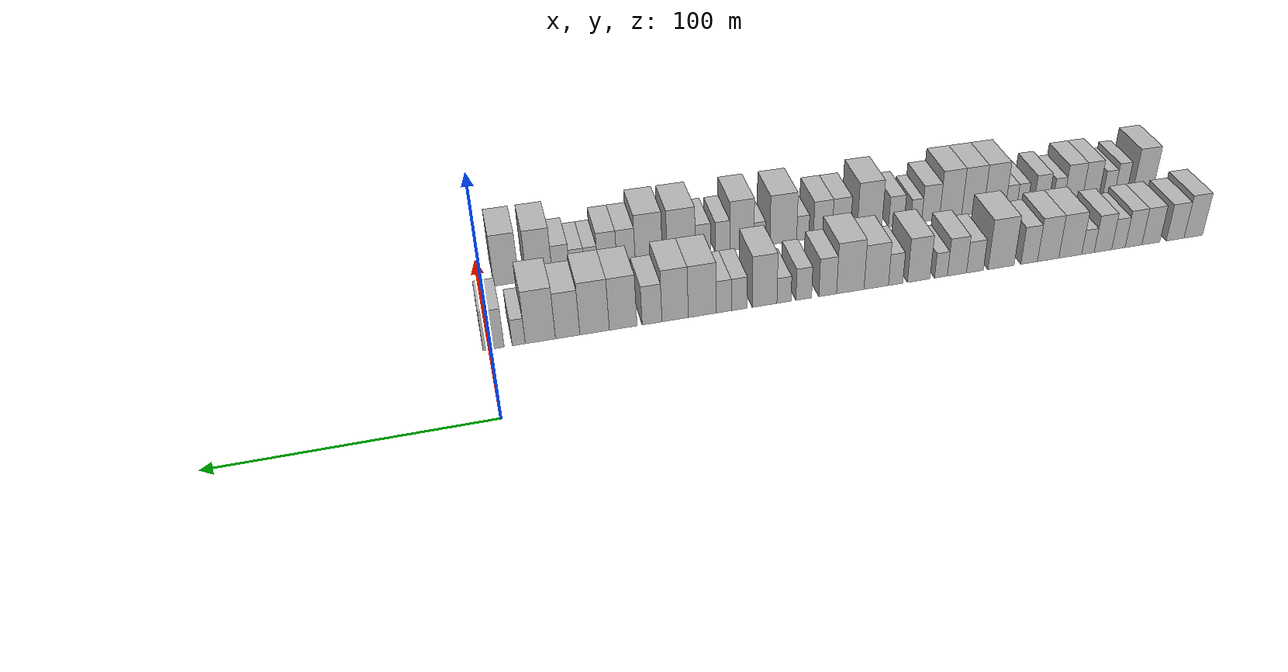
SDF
<sdf version="1.6">
 <world name="default">
  <model name="building_1">
   <static>1</static>
   <pose>50.0000 -295.6084 0 0.000000 0.000000 0.000000</pose>
   <link name="link">
    <pose>0 0 10.50 0 0 0</pose>
    <collision name="collision"><geometry><box><size>20.0000 8.7832 21.0000</size></box></geometry></collision>
    <visual name="visual">
     <cast_shadows>0</cast_shadows>
     <geometry><box><size>20.0000 8.7832 21.0000</size></box></geometry>
     <material>
      <script>
       <uri>model://HANNAS_wall/materials/scripts</uri>
       <uri>model://HANNAS_wall/materials/textures</uri>
       <name>vrc/HANNAS_wall</name>
      </script>
     </material>
    </visual>
   </link>
  </model>
  <model name="building_2">
   <static>1</static>
   <pose>50.0000 -287.0106 0 0.000000 0.000000 0.000000</pose>
   <link name="link">
    <pose>0 0 9.00 0 0 0</pose>
    <collision name="collision"><geometry><box><size>20.0000 8.4124 18.0000</size></box></geometry></collision>
    <visual name="visual">
     <cast_shadows>0</cast_shadows>
     <geometry><box><size>20.0000 8.4124 18.0000</size></box></geometry>
     <material>
      <script>
       <uri>model://HANNAS_wall/materials/scripts</uri>
       <uri>model://HANNAS_wall/materials/textures</uri>
       <name>vrc/HANNAS_wall</name>
      </script>
     </material>
    </visual>
   </link>
  </model>
  <model name="building_3">
   <static>1</static>
   <pose>50.0000 -275.5951 0 0.000000 0.000000 0.000000</pose>
   <link name="link">
    <pose>0 0 9.00 0 0 0</pose>
    <collision name="collision"><geometry><box><size>20.0000 8.4186 18.0000</size></box></geometry></collision>
    <visual name="visual">
     <cast_shadows>0</cast_shadows>
     <geometry><box><size>20.0000 8.4186 18.0000</size></box></geometry>
     <material>
      <script>
       <uri>model://HANNAS_wall/materials/scripts</uri>
       <uri>model://HANNAS_wall/materials/textures</uri>
       <name>vrc/HANNAS_wall</name>
      </script>
     </material>
    </visual>
   </link>
  </model>
  <model name="building_4">
   <static>1</static>
   <pose>50.0000 -267.5192 0 0.000000 0.000000 0.000000</pose>
   <link name="link">
    <pose>0 0 9.00 0 0 0</pose>
    <collision name="collision"><geometry><box><size>20.0000 7.7331 18.0000</size></box></geometry></collision>
    <visual name="visual">
     <cast_shadows>0</cast_shadows>
     <geometry><box><size>20.0000 7.7331 18.0000</size></box></geometry>
     <material>
      <script>
       <uri>model://HANNAS_wall/materials/scripts</uri>
       <uri>model://HANNAS_wall/materials/textures</uri>
       <name>vrc/HANNAS_wall</name>
      </script>
     </material>
    </visual>
   </link>
  </model>
  <model name="building_5">
   <static>1</static>
   <pose>50.0000 -260.5304 0 0.000000 0.000000 0.000000</pose>
   <link name="link">
    <pose>0 0 7.50 0 0 0</pose>
    <collision name="collision"><geometry><box><size>20.0000 6.2446 15.0000</size></box></geometry></collision>
    <visual name="visual">
     <cast_shadows>0</cast_shadows>
     <geometry><box><size>20.0000 6.2446 15.0000</size></box></geometry>
     <material>
      <script>
       <uri>model://HANNAS_wall/materials/scripts</uri>
       <uri>model://HANNAS_wall/materials/textures</uri>
       <name>vrc/HANNAS_wall</name>
      </script>
     </material>
    </visual>
   </link>
  </model>
  <model name="building_6">
   <static>1</static>
   <pose>50.0000 -253.3990 0 0.000000 0.000000 0.000000</pose>
   <link name="link">
    <pose>0 0 9.00 0 0 0</pose>
    <collision name="collision"><geometry><box><size>20.0000 8.0182 18.0000</size></box></geometry></collision>
    <visual name="visual">
     <cast_shadows>0</cast_shadows>
     <geometry><box><size>20.0000 8.0182 18.0000</size></box></geometry>
     <material>
      <script>
       <uri>model://HANNAS_wall/materials/scripts</uri>
       <uri>model://HANNAS_wall/materials/textures</uri>
       <name>vrc/HANNAS_wall</name>
      </script>
     </material>
    </visual>
   </link>
  </model>
  <model name="building_7">
   <static>1</static>
   <pose>50.0000 -246.5467 0 0.000000 0.000000 0.000000</pose>
   <link name="link">
    <pose>0 0 6.00 0 0 0</pose>
    <collision name="collision"><geometry><box><size>20.0000 5.6864 12.0000</size></box></geometry></collision>
    <visual name="visual">
     <cast_shadows>0</cast_shadows>
     <geometry><box><size>20.0000 5.6864 12.0000</size></box></geometry>
     <material>
      <script>
       <uri>model://HANNAS_wall/materials/scripts</uri>
       <uri>model://HANNAS_wall/materials/textures</uri>
       <name>vrc/HANNAS_wall</name>
      </script>
     </material>
    </visual>
   </link>
  </model>
  <model name="building_8">
   <static>1</static>
   <pose>50.0000 -238.4841 0 0.000000 0.000000 0.000000</pose>
   <link name="link">
    <pose>0 0 10.50 0 0 0</pose>
    <collision name="collision"><geometry><box><size>20.0000 10.4387 21.0000</size></box></geometry></collision>
    <visual name="visual">
     <cast_shadows>0</cast_shadows>
     <geometry><box><size>20.0000 10.4387 21.0000</size></box></geometry>
     <material>
      <script>
       <uri>model://HANNAS_wall/materials/scripts</uri>
       <uri>model://HANNAS_wall/materials/textures</uri>
       <name>vrc/HANNAS_wall</name>
      </script>
     </material>
    </visual>
   </link>
  </model>
  <model name="building_9">
   <static>1</static>
   <pose>50.0000 -228.4582 0 0.000000 0.000000 0.000000</pose>
   <link name="link">
    <pose>0 0 10.50 0 0 0</pose>
    <collision name="collision"><geometry><box><size>20.0000 9.6133 21.0000</size></box></geometry></collision>
    <visual name="visual">
     <cast_shadows>0</cast_shadows>
     <geometry><box><size>20.0000 9.6133 21.0000</size></box></geometry>
     <material>
      <script>
       <uri>model://HANNAS_wall/materials/scripts</uri>
       <uri>model://HANNAS_wall/materials/textures</uri>
       <name>vrc/HANNAS_wall</name>
      </script>
     </material>
    </visual>
   </link>
  </model>
  <model name="building_10">
   <static>1</static>
   <pose>50.0000 -219.9443 0 0.000000 0.000000 0.000000</pose>
   <link name="link">
    <pose>0 0 9.00 0 0 0</pose>
    <collision name="collision"><geometry><box><size>20.0000 7.4143 18.0000</size></box></geometry></collision>
    <visual name="visual">
     <cast_shadows>0</cast_shadows>
     <geometry><box><size>20.0000 7.4143 18.0000</size></box></geometry>
     <material>
      <script>
       <uri>model://HANNAS_wall/materials/scripts</uri>
       <uri>model://HANNAS_wall/materials/textures</uri>
       <name>vrc/HANNAS_wall</name>
      </script>
     </material>
    </visual>
   </link>
  </model>
  <model name="building_11">
   <static>1</static>
   <pose>50.0000 -207.4244 0 0.000000 0.000000 0.000000</pose>
   <link name="link">
    <pose>0 0 12.00 0 0 0</pose>
    <collision name="collision"><geometry><box><size>20.0000 11.6256 24.0000</size></box></geometry></collision>
    <visual name="visual">
     <cast_shadows>0</cast_shadows>
     <geometry><box><size>20.0000 11.6256 24.0000</size></box></geometry>
     <material>
      <script>
       <uri>model://HANNAS_wall/materials/scripts</uri>
       <uri>model://HANNAS_wall/materials/textures</uri>
       <name>vrc/HANNAS_wall</name>
      </script>
     </material>
    </visual>
   </link>
  </model>
  <model name="building_12">
   <static>1</static>
   <pose>50.0000 -195.9075 0 0.000000 0.000000 0.000000</pose>
   <link name="link">
    <pose>0 0 7.50 0 0 0</pose>
    <collision name="collision"><geometry><box><size>20.0000 7.4081 15.0000</size></box></geometry></collision>
    <visual name="visual">
     <cast_shadows>0</cast_shadows>
     <geometry><box><size>20.0000 7.4081 15.0000</size></box></geometry>
     <material>
      <script>
       <uri>model://HANNAS_wall/materials/scripts</uri>
       <uri>model://HANNAS_wall/materials/textures</uri>
       <name>vrc/HANNAS_wall</name>
      </script>
     </material>
    </visual>
   </link>
  </model>
  <model name="building_13">
   <static>1</static>
   <pose>50.0000 -188.0218 0 0.000000 0.000000 0.000000</pose>
   <link name="link">
    <pose>0 0 9.00 0 0 0</pose>
    <collision name="collision"><geometry><box><size>20.0000 8.3633 18.0000</size></box></geometry></collision>
    <visual name="visual">
     <cast_shadows>0</cast_shadows>
     <geometry><box><size>20.0000 8.3633 18.0000</size></box></geometry>
     <material>
      <script>
       <uri>model://HANNAS_wall/materials/scripts</uri>
       <uri>model://HANNAS_wall/materials/textures</uri>
       <name>vrc/HANNAS_wall</name>
      </script>
     </material>
    </visual>
   </link>
  </model>
  <model name="building_14">
   <static>1</static>
   <pose>50.0000 -181.0776 0 0.000000 0.000000 0.000000</pose>
   <link name="link">
    <pose>0 0 6.00 0 0 0</pose>
    <collision name="collision"><geometry><box><size>20.0000 5.5251 12.0000</size></box></geometry></collision>
    <visual name="visual">
     <cast_shadows>0</cast_shadows>
     <geometry><box><size>20.0000 5.5251 12.0000</size></box></geometry>
     <material>
      <script>
       <uri>model://HANNAS_wall/materials/scripts</uri>
       <uri>model://HANNAS_wall/materials/textures</uri>
       <name>vrc/HANNAS_wall</name>
      </script>
     </material>
    </visual>
   </link>
  </model>
  <model name="building_15">
   <static>1</static>
   <pose>50.0000 -171.4688 0 0.000000 0.000000 0.000000</pose>
   <link name="link">
    <pose>0 0 10.50 0 0 0</pose>
    <collision name="collision"><geometry><box><size>20.0000 9.6924 21.0000</size></box></geometry></collision>
    <visual name="visual">
     <cast_shadows>0</cast_shadows>
     <geometry><box><size>20.0000 9.6924 21.0000</size></box></geometry>
     <material>
      <script>
       <uri>model://HANNAS_wall/materials/scripts</uri>
       <uri>model://HANNAS_wall/materials/textures</uri>
       <name>vrc/HANNAS_wall</name>
      </script>
     </material>
    </visual>
   </link>
  </model>
  <model name="building_16">
   <static>1</static>
   <pose>50.0000 -161.5749 0 0.000000 0.000000 0.000000</pose>
   <link name="link">
    <pose>0 0 7.50 0 0 0</pose>
    <collision name="collision"><geometry><box><size>20.0000 6.0954 15.0000</size></box></geometry></collision>
    <visual name="visual">
     <cast_shadows>0</cast_shadows>
     <geometry><box><size>20.0000 6.0954 15.0000</size></box></geometry>
     <material>
      <script>
       <uri>model://HANNAS_wall/materials/scripts</uri>
       <uri>model://HANNAS_wall/materials/textures</uri>
       <name>vrc/HANNAS_wall</name>
      </script>
     </material>
    </visual>
   </link>
  </model>
  <model name="building_17">
   <static>1</static>
   <pose>50.0000 -153.3585 0 0.000000 0.000000 0.000000</pose>
   <link name="link">
    <pose>0 0 10.50 0 0 0</pose>
    <collision name="collision"><geometry><box><size>20.0000 10.3374 21.0000</size></box></geometry></collision>
    <visual name="visual">
     <cast_shadows>0</cast_shadows>
     <geometry><box><size>20.0000 10.3374 21.0000</size></box></geometry>
     <material>
      <script>
       <uri>model://HANNAS_wall/materials/scripts</uri>
       <uri>model://HANNAS_wall/materials/textures</uri>
       <name>vrc/HANNAS_wall</name>
      </script>
     </material>
    </visual>
   </link>
  </model>
  <model name="building_18">
   <static>1</static>
   <pose>50.0000 -142.4200 0 0.000000 0.000000 0.000000</pose>
   <link name="link">
    <pose>0 0 12.00 0 0 0</pose>
    <collision name="collision"><geometry><box><size>20.0000 11.5396 24.0000</size></box></geometry></collision>
    <visual name="visual">
     <cast_shadows>0</cast_shadows>
     <geometry><box><size>20.0000 11.5396 24.0000</size></box></geometry>
     <material>
      <script>
       <uri>model://HANNAS_wall/materials/scripts</uri>
       <uri>model://HANNAS_wall/materials/textures</uri>
       <name>vrc/HANNAS_wall</name>
      </script>
     </material>
    </visual>
   </link>
  </model>
  <model name="building_19">
   <static>1</static>
   <pose>50.0000 -132.9575 0 0.000000 0.000000 0.000000</pose>
   <link name="link">
    <pose>0 0 9.00 0 0 0</pose>
    <collision name="collision"><geometry><box><size>20.0000 7.3854 18.0000</size></box></geometry></collision>
    <visual name="visual">
     <cast_shadows>0</cast_shadows>
     <geometry><box><size>20.0000 7.3854 18.0000</size></box></geometry>
     <material>
      <script>
       <uri>model://HANNAS_wall/materials/scripts</uri>
       <uri>model://HANNAS_wall/materials/textures</uri>
       <name>vrc/HANNAS_wall</name>
      </script>
     </material>
    </visual>
   </link>
  </model>
  <model name="building_20">
   <static>1</static>
   <pose>50.0000 -123.0354 0 0.000000 0.000000 0.000000</pose>
   <link name="link">
    <pose>0 0 7.50 0 0 0</pose>
    <collision name="collision"><geometry><box><size>20.0000 6.4587 15.0000</size></box></geometry></collision>
    <visual name="visual">
     <cast_shadows>0</cast_shadows>
     <geometry><box><size>20.0000 6.4587 15.0000</size></box></geometry>
     <material>
      <script>
       <uri>model://HANNAS_wall/materials/scripts</uri>
       <uri>model://HANNAS_wall/materials/textures</uri>
       <name>vrc/HANNAS_wall</name>
      </script>
     </material>
    </visual>
   </link>
  </model>
  <model name="building_21">
   <static>1</static>
   <pose>50.0000 -114.9029 0 0.000000 0.000000 0.000000</pose>
   <link name="link">
    <pose>0 0 6.00 0 0 0</pose>
    <collision name="collision"><geometry><box><size>20.0000 5.8064 12.0000</size></box></geometry></collision>
    <visual name="visual">
     <cast_shadows>0</cast_shadows>
     <geometry><box><size>20.0000 5.8064 12.0000</size></box></geometry>
     <material>
      <script>
       <uri>model://HANNAS_wall/materials/scripts</uri>
       <uri>model://HANNAS_wall/materials/textures</uri>
       <name>vrc/HANNAS_wall</name>
      </script>
     </material>
    </visual>
   </link>
  </model>
  <model name="building_22">
   <static>1</static>
   <pose>50.0000 -106.9604 0 0.000000 0.000000 0.000000</pose>
   <link name="link">
    <pose>0 0 12.00 0 0 0</pose>
    <collision name="collision"><geometry><box><size>20.0000 10.0785 24.0000</size></box></geometry></collision>
    <visual name="visual">
     <cast_shadows>0</cast_shadows>
     <geometry><box><size>20.0000 10.0785 24.0000</size></box></geometry>
     <material>
      <script>
       <uri>model://HANNAS_wall/materials/scripts</uri>
       <uri>model://HANNAS_wall/materials/textures</uri>
       <name>vrc/HANNAS_wall</name>
      </script>
     </material>
    </visual>
   </link>
  </model>
  <model name="building_23">
   <static>1</static>
   <pose>50.0000 -96.7455 0 0.000000 0.000000 0.000000</pose>
   <link name="link">
    <pose>0 0 7.50 0 0 0</pose>
    <collision name="collision"><geometry><box><size>20.0000 6.3514 15.0000</size></box></geometry></collision>
    <visual name="visual">
     <cast_shadows>0</cast_shadows>
     <geometry><box><size>20.0000 6.3514 15.0000</size></box></geometry>
     <material>
      <script>
       <uri>model://HANNAS_wall/materials/scripts</uri>
       <uri>model://HANNAS_wall/materials/textures</uri>
       <name>vrc/HANNAS_wall</name>
      </script>
     </material>
    </visual>
   </link>
  </model>
  <model name="building_24">
   <static>1</static>
   <pose>50.0000 -90.5376 0 0.000000 0.000000 0.000000</pose>
   <link name="link">
    <pose>0 0 7.50 0 0 0</pose>
    <collision name="collision"><geometry><box><size>20.0000 6.0643 15.0000</size></box></geometry></collision>
    <visual name="visual">
     <cast_shadows>0</cast_shadows>
     <geometry><box><size>20.0000 6.0643 15.0000</size></box></geometry>
     <material>
      <script>
       <uri>model://HANNAS_wall/materials/scripts</uri>
       <uri>model://HANNAS_wall/materials/textures</uri>
       <name>vrc/HANNAS_wall</name>
      </script>
     </material>
    </visual>
   </link>
  </model>
  <model name="building_25">
   <static>1</static>
   <pose>50.0000 -81.9061 0 0.000000 0.000000 0.000000</pose>
   <link name="link">
    <pose>0 0 12.00 0 0 0</pose>
    <collision name="collision"><geometry><box><size>20.0000 11.1988 24.0000</size></box></geometry></collision>
    <visual name="visual">
     <cast_shadows>0</cast_shadows>
     <geometry><box><size>20.0000 11.1988 24.0000</size></box></geometry>
     <material>
      <script>
       <uri>model://HANNAS_wall/materials/scripts</uri>
       <uri>model://HANNAS_wall/materials/textures</uri>
       <name>vrc/HANNAS_wall</name>
      </script>
     </material>
    </visual>
   </link>
  </model>
  <model name="building_26">
   <static>1</static>
   <pose>50.0000 -71.0972 0 0.000000 0.000000 0.000000</pose>
   <link name="link">
    <pose>0 0 12.00 0 0 0</pose>
    <collision name="collision"><geometry><box><size>20.0000 10.4188 24.0000</size></box></geometry></collision>
    <visual name="visual">
     <cast_shadows>0</cast_shadows>
     <geometry><box><size>20.0000 10.4188 24.0000</size></box></geometry>
     <material>
      <script>
       <uri>model://HANNAS_wall/materials/scripts</uri>
       <uri>model://HANNAS_wall/materials/textures</uri>
       <name>vrc/HANNAS_wall</name>
      </script>
     </material>
    </visual>
   </link>
  </model>
  <model name="building_27">
   <static>1</static>
   <pose>50.0000 -62.0028 0 0.000000 0.000000 0.000000</pose>
   <link name="link">
    <pose>0 0 9.00 0 0 0</pose>
    <collision name="collision"><geometry><box><size>20.0000 7.7700 18.0000</size></box></geometry></collision>
    <visual name="visual">
     <cast_shadows>0</cast_shadows>
     <geometry><box><size>20.0000 7.7700 18.0000</size></box></geometry>
     <material>
      <script>
       <uri>model://HANNAS_wall/materials/scripts</uri>
       <uri>model://HANNAS_wall/materials/textures</uri>
       <name>vrc/HANNAS_wall</name>
      </script>
     </material>
    </visual>
   </link>
  </model>
  <model name="building_28">
   <static>1</static>
   <pose>50.0000 -50.7396 0 0.000000 0.000000 0.000000</pose>
   <link name="link">
    <pose>0 0 12.00 0 0 0</pose>
    <collision name="collision"><geometry><box><size>20.0000 10.7563 24.0000</size></box></geometry></collision>
    <visual name="visual">
     <cast_shadows>0</cast_shadows>
     <geometry><box><size>20.0000 10.7563 24.0000</size></box></geometry>
     <material>
      <script>
       <uri>model://HANNAS_wall/materials/scripts</uri>
       <uri>model://HANNAS_wall/materials/textures</uri>
       <name>vrc/HANNAS_wall</name>
      </script>
     </material>
    </visual>
   </link>
  </model>
  <model name="building_29">
   <static>1</static>
   <pose>50.0000 -39.6867 0 0.000000 0.000000 0.000000</pose>
   <link name="link">
    <pose>0 0 12.00 0 0 0</pose>
    <collision name="collision"><geometry><box><size>20.0000 11.3496 24.0000</size></box></geometry></collision>
    <visual name="visual">
     <cast_shadows>0</cast_shadows>
     <geometry><box><size>20.0000 11.3496 24.0000</size></box></geometry>
     <material>
      <script>
       <uri>model://HANNAS_wall/materials/scripts</uri>
       <uri>model://HANNAS_wall/materials/textures</uri>
       <name>vrc/HANNAS_wall</name>
      </script>
     </material>
    </visual>
   </link>
  </model>
  <model name="building_30">
   <static>1</static>
   <pose>50.0000 -29.3589 0 0.000000 0.000000 0.000000</pose>
   <link name="link">
    <pose>0 0 10.50 0 0 0</pose>
    <collision name="collision"><geometry><box><size>20.0000 9.3060 21.0000</size></box></geometry></collision>
    <visual name="visual">
     <cast_shadows>0</cast_shadows>
     <geometry><box><size>20.0000 9.3060 21.0000</size></box></geometry>
     <material>
      <script>
       <uri>model://HANNAS_wall/materials/scripts</uri>
       <uri>model://HANNAS_wall/materials/textures</uri>
       <name>vrc/HANNAS_wall</name>
      </script>
     </material>
    </visual>
   </link>
  </model>
  <model name="building_31">
   <static>1</static>
   <pose>50.0000 -19.0063 0 0.000000 0.000000 0.000000</pose>
   <link name="link">
    <pose>0 0 12.00 0 0 0</pose>
    <collision name="collision"><geometry><box><size>20.0000 11.3990 24.0000</size></box></geometry></collision>
    <visual name="visual">
     <cast_shadows>0</cast_shadows>
     <geometry><box><size>20.0000 11.3990 24.0000</size></box></geometry>
     <material>
      <script>
       <uri>model://HANNAS_wall/materials/scripts</uri>
       <uri>model://HANNAS_wall/materials/textures</uri>
       <name>vrc/HANNAS_wall</name>
      </script>
     </material>
    </visual>
   </link>
  </model>
  <model name="building_32">
   <static>1</static>
   <pose>50.0000 -10.8610 0 0.000000 0.000000 0.000000</pose>
   <link name="link">
    <pose>0 0 6.00 0 0 0</pose>
    <collision name="collision"><geometry><box><size>20.0000 4.8917 12.0000</size></box></geometry></collision>
    <visual name="visual">
     <cast_shadows>0</cast_shadows>
     <geometry><box><size>20.0000 4.8917 12.0000</size></box></geometry>
     <material>
      <script>
       <uri>model://HANNAS_wall/materials/scripts</uri>
       <uri>model://HANNAS_wall/materials/textures</uri>
       <name>vrc/HANNAS_wall</name>
      </script>
     </material>
    </visual>
   </link>
  </model>
  <model name="building_33">
   <static>1</static>
   <pose>50.0000 -1.4541 0 0.000000 0.000000 0.000000</pose>
   <link name="link">
    <pose>0 0 9.00 0 0 0</pose>
    <collision name="collision"><geometry><box><size>20.0000 7.9220 18.0000</size></box></geometry></collision>
    <visual name="visual">
     <cast_shadows>0</cast_shadows>
     <geometry><box><size>20.0000 7.9220 18.0000</size></box></geometry>
     <material>
      <script>
       <uri>model://HANNAS_wall/materials/scripts</uri>
       <uri>model://HANNAS_wall/materials/textures</uri>
       <name>vrc/HANNAS_wall</name>
      </script>
     </material>
    </visual>
   </link>
  </model>
  <model name="building_69">
   <static>1</static>
   <pose>90.0000 -294.8831 0 0.000000 0.000000 0.000000</pose>
   <link name="link">
    <pose>0 0 10.50 0 0 0</pose>
    <collision name="collision"><geometry><box><size>20.0000 10.2337 21.0000</size></box></geometry></collision>
    <visual name="visual">
     <cast_shadows>0</cast_shadows>
     <geometry><box><size>20.0000 10.2337 21.0000</size></box></geometry>
     <material>
      <script>
       <uri>model://HANNAS_wall/materials/scripts</uri>
       <uri>model://HANNAS_wall/materials/textures</uri>
       <name>vrc/HANNAS_wall</name>
      </script>
     </material>
    </visual>
   </link>
  </model>
  <model name="building_70">
   <static>1</static>
   <pose>90.0000 -283.7280 0 0.000000 0.000000 0.000000</pose>
   <link name="link">
    <pose>0 0 7.50 0 0 0</pose>
    <collision name="collision"><geometry><box><size>20.0000 6.0766 15.0000</size></box></geometry></collision>
    <visual name="visual">
     <cast_shadows>0</cast_shadows>
     <geometry><box><size>20.0000 6.0766 15.0000</size></box></geometry>
     <material>
      <script>
       <uri>model://HANNAS_wall/materials/scripts</uri>
       <uri>model://HANNAS_wall/materials/textures</uri>
       <name>vrc/HANNAS_wall</name>
      </script>
     </material>
    </visual>
   </link>
  </model>
  <model name="building_71">
   <static>1</static>
   <pose>90.0000 -277.7828 0 0.000000 0.000000 0.000000</pose>
   <link name="link">
    <pose>0 0 6.00 0 0 0</pose>
    <collision name="collision"><geometry><box><size>20.0000 5.8138 12.0000</size></box></geometry></collision>
    <visual name="visual">
     <cast_shadows>0</cast_shadows>
     <geometry><box><size>20.0000 5.8138 12.0000</size></box></geometry>
     <material>
      <script>
       <uri>model://HANNAS_wall/materials/scripts</uri>
       <uri>model://HANNAS_wall/materials/textures</uri>
       <name>vrc/HANNAS_wall</name>
      </script>
     </material>
    </visual>
   </link>
  </model>
  <model name="building_72">
   <static>1</static>
   <pose>90.0000 -268.8610 0 0.000000 0.000000 0.000000</pose>
   <link name="link">
    <pose>0 0 9.00 0 0 0</pose>
    <collision name="collision"><geometry><box><size>20.0000 8.0298 18.0000</size></box></geometry></collision>
    <visual name="visual">
     <cast_shadows>0</cast_shadows>
     <geometry><box><size>20.0000 8.0298 18.0000</size></box></geometry>
     <material>
      <script>
       <uri>model://HANNAS_wall/materials/scripts</uri>
       <uri>model://HANNAS_wall/materials/textures</uri>
       <name>vrc/HANNAS_wall</name>
      </script>
     </material>
    </visual>
   </link>
  </model>
  <model name="building_73">
   <static>1</static>
   <pose>90.0000 -260.3591 0 0.000000 0.000000 0.000000</pose>
   <link name="link">
    <pose>0 0 9.00 0 0 0</pose>
    <collision name="collision"><geometry><box><size>20.0000 8.9741 18.0000</size></box></geometry></collision>
    <visual name="visual">
     <cast_shadows>0</cast_shadows>
     <geometry><box><size>20.0000 8.9741 18.0000</size></box></geometry>
     <material>
      <script>
       <uri>model://HANNAS_wall/materials/scripts</uri>
       <uri>model://HANNAS_wall/materials/textures</uri>
       <name>vrc/HANNAS_wall</name>
      </script>
     </material>
    </visual>
   </link>
  </model>
  <model name="building_74">
   <static>1</static>
   <pose>90.0000 -253.1556 0 0.000000 0.000000 0.000000</pose>
   <link name="link">
    <pose>0 0 6.00 0 0 0</pose>
    <collision name="collision"><geometry><box><size>20.0000 5.4329 12.0000</size></box></geometry></collision>
    <visual name="visual">
     <cast_shadows>0</cast_shadows>
     <geometry><box><size>20.0000 5.4329 12.0000</size></box></geometry>
     <material>
      <script>
       <uri>model://HANNAS_wall/materials/scripts</uri>
       <uri>model://HANNAS_wall/materials/textures</uri>
       <name>vrc/HANNAS_wall</name>
      </script>
     </material>
    </visual>
   </link>
  </model>
  <model name="building_75">
   <static>1</static>
   <pose>90.0000 -244.8351 0 0.000000 0.000000 0.000000</pose>
   <link name="link">
    <pose>0 0 7.50 0 0 0</pose>
    <collision name="collision"><geometry><box><size>20.0000 7.2080 15.0000</size></box></geometry></collision>
    <visual name="visual">
     <cast_shadows>0</cast_shadows>
     <geometry><box><size>20.0000 7.2080 15.0000</size></box></geometry>
     <material>
      <script>
       <uri>model://HANNAS_wall/materials/scripts</uri>
       <uri>model://HANNAS_wall/materials/textures</uri>
       <name>vrc/HANNAS_wall</name>
      </script>
     </material>
    </visual>
   </link>
  </model>
  <model name="building_76">
   <static>1</static>
   <pose>90.0000 -235.6593 0 0.000000 0.000000 0.000000</pose>
   <link name="link">
    <pose>0 0 6.00 0 0 0</pose>
    <collision name="collision"><geometry><box><size>20.0000 5.1436 12.0000</size></box></geometry></collision>
    <visual name="visual">
     <cast_shadows>0</cast_shadows>
     <geometry><box><size>20.0000 5.1436 12.0000</size></box></geometry>
     <material>
      <script>
       <uri>model://HANNAS_wall/materials/scripts</uri>
       <uri>model://HANNAS_wall/materials/textures</uri>
       <name>vrc/HANNAS_wall</name>
      </script>
     </material>
    </visual>
   </link>
  </model>
  <model name="building_77">
   <static>1</static>
   <pose>90.0000 -230.3656 0 0.000000 0.000000 0.000000</pose>
   <link name="link">
    <pose>0 0 6.00 0 0 0</pose>
    <collision name="collision"><geometry><box><size>20.0000 5.4438 12.0000</size></box></geometry></collision>
    <visual name="visual">
     <cast_shadows>0</cast_shadows>
     <geometry><box><size>20.0000 5.4438 12.0000</size></box></geometry>
     <material>
      <script>
       <uri>model://HANNAS_wall/materials/scripts</uri>
       <uri>model://HANNAS_wall/materials/textures</uri>
       <name>vrc/HANNAS_wall</name>
      </script>
     </material>
    </visual>
   </link>
  </model>
  <model name="building_78">
   <static>1</static>
   <pose>90.0000 -222.4977 0 0.000000 0.000000 0.000000</pose>
   <link name="link">
    <pose>0 0 12.00 0 0 0</pose>
    <collision name="collision"><geometry><box><size>20.0000 10.2920 24.0000</size></box></geometry></collision>
    <visual name="visual">
     <cast_shadows>0</cast_shadows>
     <geometry><box><size>20.0000 10.2920 24.0000</size></box></geometry>
     <material>
      <script>
       <uri>model://HANNAS_wall/materials/scripts</uri>
       <uri>model://HANNAS_wall/materials/textures</uri>
       <name>vrc/HANNAS_wall</name>
      </script>
     </material>
    </visual>
   </link>
  </model>
  <model name="building_79">
   <static>1</static>
   <pose>90.0000 -212.2177 0 0.000000 0.000000 0.000000</pose>
   <link name="link">
    <pose>0 0 12.00 0 0 0</pose>
    <collision name="collision"><geometry><box><size>20.0000 10.2680 24.0000</size></box></geometry></collision>
    <visual name="visual">
     <cast_shadows>0</cast_shadows>
     <geometry><box><size>20.0000 10.2680 24.0000</size></box></geometry>
     <material>
      <script>
       <uri>model://HANNAS_wall/materials/scripts</uri>
       <uri>model://HANNAS_wall/materials/textures</uri>
       <name>vrc/HANNAS_wall</name>
      </script>
     </material>
    </visual>
   </link>
  </model>
  <model name="building_80">
   <static>1</static>
   <pose>90.0000 -201.9517 0 0.000000 0.000000 0.000000</pose>
   <link name="link">
    <pose>0 0 12.00 0 0 0</pose>
    <collision name="collision"><geometry><box><size>20.0000 10.2640 24.0000</size></box></geometry></collision>
    <visual name="visual">
     <cast_shadows>0</cast_shadows>
     <geometry><box><size>20.0000 10.2640 24.0000</size></box></geometry>
     <material>
      <script>
       <uri>model://HANNAS_wall/materials/scripts</uri>
       <uri>model://HANNAS_wall/materials/textures</uri>
       <name>vrc/HANNAS_wall</name>
      </script>
     </material>
    </visual>
   </link>
  </model>
  <model name="building_81">
   <static>1</static>
   <pose>90.0000 -192.7112 0 0.000000 0.000000 0.000000</pose>
   <link name="link">
    <pose>0 0 9.00 0 0 0</pose>
    <collision name="collision"><geometry><box><size>20.0000 8.2171 18.0000</size></box></geometry></collision>
    <visual name="visual">
     <cast_shadows>0</cast_shadows>
     <geometry><box><size>20.0000 8.2171 18.0000</size></box></geometry>
     <material>
      <script>
       <uri>model://HANNAS_wall/materials/scripts</uri>
       <uri>model://HANNAS_wall/materials/textures</uri>
       <name>vrc/HANNAS_wall</name>
      </script>
     </material>
    </visual>
   </link>
  </model>
  <model name="building_82">
   <static>1</static>
   <pose>90.0000 -186.0684 0 0.000000 0.000000 0.000000</pose>
   <link name="link">
    <pose>0 0 6.00 0 0 0</pose>
    <collision name="collision"><geometry><box><size>20.0000 5.0684 12.0000</size></box></geometry></collision>
    <visual name="visual">
     <cast_shadows>0</cast_shadows>
     <geometry><box><size>20.0000 5.0684 12.0000</size></box></geometry>
     <material>
      <script>
       <uri>model://HANNAS_wall/materials/scripts</uri>
       <uri>model://HANNAS_wall/materials/textures</uri>
       <name>vrc/HANNAS_wall</name>
      </script>
     </material>
    </visual>
   </link>
  </model>
  <model name="building_83">
   <static>1</static>
   <pose>90.0000 -176.9957 0 0.000000 0.000000 0.000000</pose>
   <link name="link">
    <pose>0 0 7.50 0 0 0</pose>
    <collision name="collision"><geometry><box><size>20.0000 7.0769 15.0000</size></box></geometry></collision>
    <visual name="visual">
     <cast_shadows>0</cast_shadows>
     <geometry><box><size>20.0000 7.0769 15.0000</size></box></geometry>
     <material>
      <script>
       <uri>model://HANNAS_wall/materials/scripts</uri>
       <uri>model://HANNAS_wall/materials/textures</uri>
       <name>vrc/HANNAS_wall</name>
      </script>
     </material>
    </visual>
   </link>
  </model>
  <model name="building_84">
   <static>1</static>
   <pose>90.0000 -164.8664 0 0.000000 0.000000 0.000000</pose>
   <link name="link">
    <pose>0 0 12.00 0 0 0</pose>
    <collision name="collision"><geometry><box><size>20.0000 11.1818 24.0000</size></box></geometry></collision>
    <visual name="visual">
     <cast_shadows>0</cast_shadows>
     <geometry><box><size>20.0000 11.1818 24.0000</size></box></geometry>
     <material>
      <script>
       <uri>model://HANNAS_wall/materials/scripts</uri>
       <uri>model://HANNAS_wall/materials/textures</uri>
       <name>vrc/HANNAS_wall</name>
      </script>
     </material>
    </visual>
   </link>
  </model>
  <model name="building_85">
   <static>1</static>
   <pose>90.0000 -152.1957 0 0.000000 0.000000 0.000000</pose>
   <link name="link">
    <pose>0 0 9.00 0 0 0</pose>
    <collision name="collision"><geometry><box><size>20.0000 8.1596 18.0000</size></box></geometry></collision>
    <visual name="visual">
     <cast_shadows>0</cast_shadows>
     <geometry><box><size>20.0000 8.1596 18.0000</size></box></geometry>
     <material>
      <script>
       <uri>model://HANNAS_wall/materials/scripts</uri>
       <uri>model://HANNAS_wall/materials/textures</uri>
       <name>vrc/HANNAS_wall</name>
      </script>
     </material>
    </visual>
   </link>
  </model>
  <model name="building_86">
   <static>1</static>
   <pose>90.0000 -143.9330 0 0.000000 0.000000 0.000000</pose>
   <link name="link">
    <pose>0 0 9.00 0 0 0</pose>
    <collision name="collision"><geometry><box><size>20.0000 8.3658 18.0000</size></box></geometry></collision>
    <visual name="visual">
     <cast_shadows>0</cast_shadows>
     <geometry><box><size>20.0000 8.3658 18.0000</size></box></geometry>
     <material>
      <script>
       <uri>model://HANNAS_wall/materials/scripts</uri>
       <uri>model://HANNAS_wall/materials/textures</uri>
       <name>vrc/HANNAS_wall</name>
      </script>
     </material>
    </visual>
   </link>
  </model>
  <model name="building_87">
   <static>1</static>
   <pose>90.0000 -135.0626 0 0.000000 0.000000 0.000000</pose>
   <link name="link">
    <pose>0 0 6.00 0 0 0</pose>
    <collision name="collision"><geometry><box><size>20.0000 5.3749 12.0000</size></box></geometry></collision>
    <visual name="visual">
     <cast_shadows>0</cast_shadows>
     <geometry><box><size>20.0000 5.3749 12.0000</size></box></geometry>
     <material>
      <script>
       <uri>model://HANNAS_wall/materials/scripts</uri>
       <uri>model://HANNAS_wall/materials/textures</uri>
       <name>vrc/HANNAS_wall</name>
      </script>
     </material>
    </visual>
   </link>
  </model>
  <model name="building_88">
   <static>1</static>
   <pose>90.0000 -126.5322 0 0.000000 0.000000 0.000000</pose>
   <link name="link">
    <pose>0 0 12.00 0 0 0</pose>
    <collision name="collision"><geometry><box><size>20.0000 11.6860 24.0000</size></box></geometry></collision>
    <visual name="visual">
     <cast_shadows>0</cast_shadows>
     <geometry><box><size>20.0000 11.6860 24.0000</size></box></geometry>
     <material>
      <script>
       <uri>model://HANNAS_wall/materials/scripts</uri>
       <uri>model://HANNAS_wall/materials/textures</uri>
       <name>vrc/HANNAS_wall</name>
      </script>
     </material>
    </visual>
   </link>
  </model>
  <model name="building_89">
   <static>1</static>
   <pose>90.0000 -116.2276 0 0.000000 0.000000 0.000000</pose>
   <link name="link">
    <pose>0 0 6.00 0 0 0</pose>
    <collision name="collision"><geometry><box><size>20.0000 4.9231 12.0000</size></box></geometry></collision>
    <visual name="visual">
     <cast_shadows>0</cast_shadows>
     <geometry><box><size>20.0000 4.9231 12.0000</size></box></geometry>
     <material>
      <script>
       <uri>model://HANNAS_wall/materials/scripts</uri>
       <uri>model://HANNAS_wall/materials/textures</uri>
       <name>vrc/HANNAS_wall</name>
      </script>
     </material>
    </visual>
   </link>
  </model>
  <model name="building_90">
   <static>1</static>
   <pose>90.0000 -108.5277 0 0.000000 0.000000 0.000000</pose>
   <link name="link">
    <pose>0 0 12.00 0 0 0</pose>
    <collision name="collision"><geometry><box><size>20.0000 10.4768 24.0000</size></box></geometry></collision>
    <visual name="visual">
     <cast_shadows>0</cast_shadows>
     <geometry><box><size>20.0000 10.4768 24.0000</size></box></geometry>
     <material>
      <script>
       <uri>model://HANNAS_wall/materials/scripts</uri>
       <uri>model://HANNAS_wall/materials/textures</uri>
       <name>vrc/HANNAS_wall</name>
      </script>
     </material>
    </visual>
   </link>
  </model>
  <model name="building_91">
   <static>1</static>
   <pose>90.0000 -100.1976 0 0.000000 0.000000 0.000000</pose>
   <link name="link">
    <pose>0 0 7.50 0 0 0</pose>
    <collision name="collision"><geometry><box><size>20.0000 6.1833 15.0000</size></box></geometry></collision>
    <visual name="visual">
     <cast_shadows>0</cast_shadows>
     <geometry><box><size>20.0000 6.1833 15.0000</size></box></geometry>
     <material>
      <script>
       <uri>model://HANNAS_wall/materials/scripts</uri>
       <uri>model://HANNAS_wall/materials/textures</uri>
       <name>vrc/HANNAS_wall</name>
      </script>
     </material>
    </visual>
   </link>
  </model>
  <model name="building_92">
   <static>1</static>
   <pose>90.0000 -91.8778 0 0.000000 0.000000 0.000000</pose>
   <link name="link">
    <pose>0 0 7.50 0 0 0</pose>
    <collision name="collision"><geometry><box><size>20.0000 6.4563 15.0000</size></box></geometry></collision>
    <visual name="visual">
     <cast_shadows>0</cast_shadows>
     <geometry><box><size>20.0000 6.4563 15.0000</size></box></geometry>
     <material>
      <script>
       <uri>model://HANNAS_wall/materials/scripts</uri>
       <uri>model://HANNAS_wall/materials/textures</uri>
       <name>vrc/HANNAS_wall</name>
      </script>
     </material>
    </visual>
   </link>
  </model>
  <model name="building_93">
   <static>1</static>
   <pose>90.0000 -82.6861 0 0.000000 0.000000 0.000000</pose>
   <link name="link">
    <pose>0 0 12.00 0 0 0</pose>
    <collision name="collision"><geometry><box><size>20.0000 11.9272 24.0000</size></box></geometry></collision>
    <visual name="visual">
     <cast_shadows>0</cast_shadows>
     <geometry><box><size>20.0000 11.9272 24.0000</size></box></geometry>
     <material>
      <script>
       <uri>model://HANNAS_wall/materials/scripts</uri>
       <uri>model://HANNAS_wall/materials/textures</uri>
       <name>vrc/HANNAS_wall</name>
      </script>
     </material>
    </visual>
   </link>
  </model>
  <model name="building_94">
   <static>1</static>
   <pose>90.0000 -69.0409 0 0.000000 0.000000 0.000000</pose>
   <link name="link">
    <pose>0 0 12.00 0 0 0</pose>
    <collision name="collision"><geometry><box><size>20.0000 11.3632 24.0000</size></box></geometry></collision>
    <visual name="visual">
     <cast_shadows>0</cast_shadows>
     <geometry><box><size>20.0000 11.3632 24.0000</size></box></geometry>
     <material>
      <script>
       <uri>model://HANNAS_wall/materials/scripts</uri>
       <uri>model://HANNAS_wall/materials/textures</uri>
       <name>vrc/HANNAS_wall</name>
      </script>
     </material>
    </visual>
   </link>
  </model>
  <model name="building_95">
   <static>1</static>
   <pose>90.0000 -59.5511 0 0.000000 0.000000 0.000000</pose>
   <link name="link">
    <pose>0 0 9.00 0 0 0</pose>
    <collision name="collision"><geometry><box><size>20.0000 7.6165 18.0000</size></box></geometry></collision>
    <visual name="visual">
     <cast_shadows>0</cast_shadows>
     <geometry><box><size>20.0000 7.6165 18.0000</size></box></geometry>
     <material>
      <script>
       <uri>model://HANNAS_wall/materials/scripts</uri>
       <uri>model://HANNAS_wall/materials/textures</uri>
       <name>vrc/HANNAS_wall</name>
      </script>
     </material>
    </visual>
   </link>
  </model>
  <model name="building_96">
   <static>1</static>
   <pose>90.0000 -51.7771 0 0.000000 0.000000 0.000000</pose>
   <link name="link">
    <pose>0 0 9.00 0 0 0</pose>
    <collision name="collision"><geometry><box><size>20.0000 7.9316 18.0000</size></box></geometry></collision>
    <visual name="visual">
     <cast_shadows>0</cast_shadows>
     <geometry><box><size>20.0000 7.9316 18.0000</size></box></geometry>
     <material>
      <script>
       <uri>model://HANNAS_wall/materials/scripts</uri>
       <uri>model://HANNAS_wall/materials/textures</uri>
       <name>vrc/HANNAS_wall</name>
      </script>
     </material>
    </visual>
   </link>
  </model>
  <model name="building_97">
   <static>1</static>
   <pose>90.0000 -45.0283 0 0.000000 0.000000 0.000000</pose>
   <link name="link">
    <pose>0 0 6.00 0 0 0</pose>
    <collision name="collision"><geometry><box><size>20.0000 5.5660 12.0000</size></box></geometry></collision>
    <visual name="visual">
     <cast_shadows>0</cast_shadows>
     <geometry><box><size>20.0000 5.5660 12.0000</size></box></geometry>
     <material>
      <script>
       <uri>model://HANNAS_wall/materials/scripts</uri>
       <uri>model://HANNAS_wall/materials/textures</uri>
       <name>vrc/HANNAS_wall</name>
      </script>
     </material>
    </visual>
   </link>
  </model>
  <model name="building_98">
   <static>1</static>
   <pose>90.0000 -39.2660 0 0.000000 0.000000 0.000000</pose>
   <link name="link">
    <pose>0 0 6.00 0 0 0</pose>
    <collision name="collision"><geometry><box><size>20.0000 5.9586 12.0000</size></box></geometry></collision>
    <visual name="visual">
     <cast_shadows>0</cast_shadows>
     <geometry><box><size>20.0000 5.9586 12.0000</size></box></geometry>
     <material>
      <script>
       <uri>model://HANNAS_wall/materials/scripts</uri>
       <uri>model://HANNAS_wall/materials/textures</uri>
       <name>vrc/HANNAS_wall</name>
      </script>
     </material>
    </visual>
   </link>
  </model>
  <model name="building_99">
   <static>1</static>
   <pose>90.0000 -32.7699 0 0.000000 0.000000 0.000000</pose>
   <link name="link">
    <pose>0 0 7.50 0 0 0</pose>
    <collision name="collision"><geometry><box><size>20.0000 7.0337 15.0000</size></box></geometry></collision>
    <visual name="visual">
     <cast_shadows>0</cast_shadows>
     <geometry><box><size>20.0000 7.0337 15.0000</size></box></geometry>
     <material>
      <script>
       <uri>model://HANNAS_wall/materials/scripts</uri>
       <uri>model://HANNAS_wall/materials/textures</uri>
       <name>vrc/HANNAS_wall</name>
      </script>
     </material>
    </visual>
   </link>
  </model>
  <model name="building_100">
   <static>1</static>
   <pose>90.0000 -24.0125 0 0.000000 0.000000 0.000000</pose>
   <link name="link">
    <pose>0 0 12.00 0 0 0</pose>
    <collision name="collision"><geometry><box><size>20.0000 10.4810 24.0000</size></box></geometry></collision>
    <visual name="visual">
     <cast_shadows>0</cast_shadows>
     <geometry><box><size>20.0000 10.4810 24.0000</size></box></geometry>
     <material>
      <script>
       <uri>model://HANNAS_wall/materials/scripts</uri>
       <uri>model://HANNAS_wall/materials/textures</uri>
       <name>vrc/HANNAS_wall</name>
      </script>
     </material>
    </visual>
   </link>
  </model>
  <model name="building_101">
   <static>1</static>
   <pose>90.0000 -10.7483 0 0.000000 0.000000 0.000000</pose>
   <link name="link">
    <pose>0 0 12.00 0 0 0</pose>
    <collision name="collision"><geometry><box><size>20.0000 10.0474 24.0000</size></box></geometry></collision>
    <visual name="visual">
     <cast_shadows>0</cast_shadows>
     <geometry><box><size>20.0000 10.0474 24.0000</size></box></geometry>
     <material>
      <script>
       <uri>model://HANNAS_wall/materials/scripts</uri>
       <uri>model://HANNAS_wall/materials/textures</uri>
       <name>vrc/HANNAS_wall</name>
      </script>
     </material>
    </visual>
   </link>
  </model>
 </world>
</sdf>
